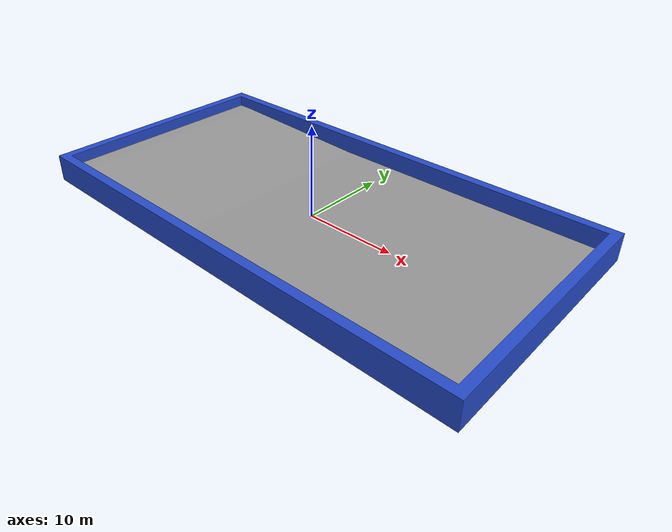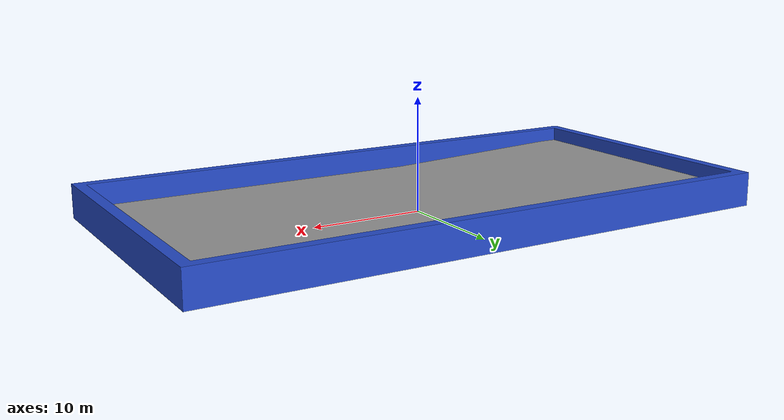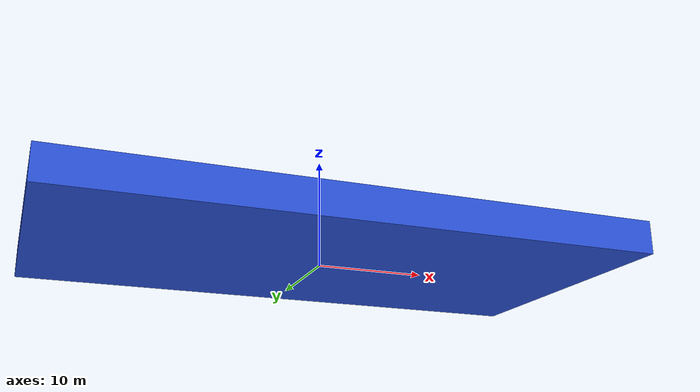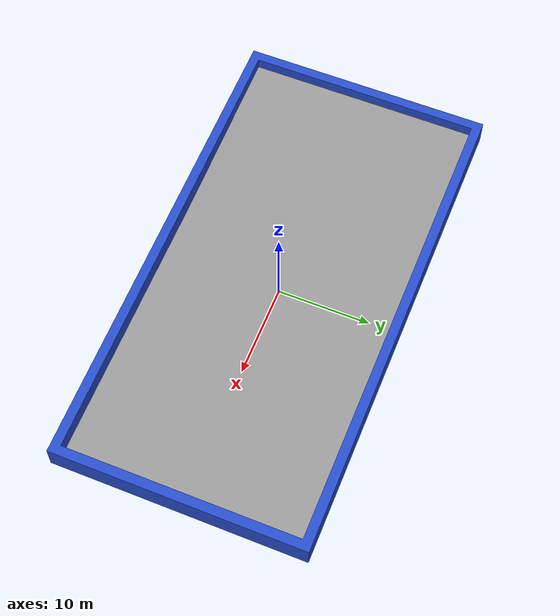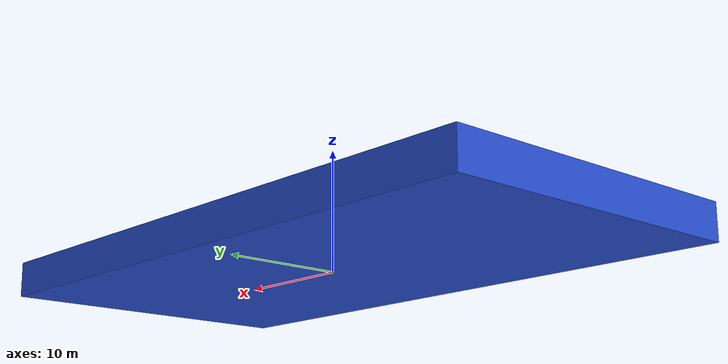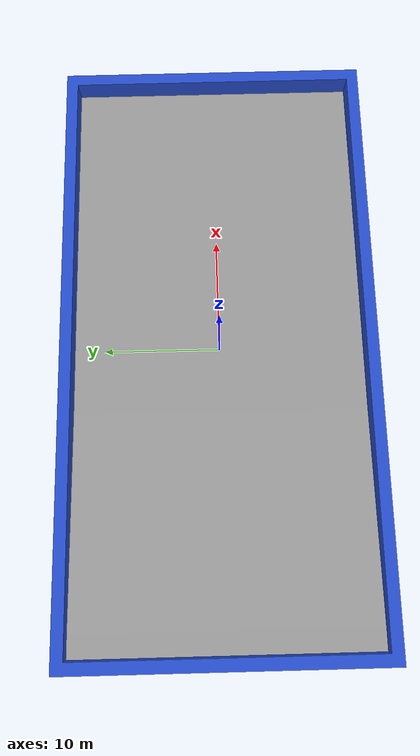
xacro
<?xml version="1.0"?>
<robot
  name="pool" xmlns:xacro="http://www.ros.org/wiki/xacro">
  <xacro:include filename="$(find pool)/urdf/materials.xacro" />
  <xacro:include filename="$(find pool)/urdf/pool.gazebo" />

  <link
    name="Base_link">
    <inertial>
      <origin
        xyz="-8.9797E-16 3.0259E-15 0.75567"
        rpy="0 0 0" />
      <mass
        value="12379000" />
      <inertia
        ixx="935560000"
        ixy="-5.1E-07"
        ixz="2.8051E-08"
        iyy="3143500000"
        iyz="6.3008E-08"
        izz="4066800000" />
    </inertial>
    <visual>
      <origin
        xyz="0 0 0"
        rpy="0 0 0" />
      <geometry>
        <mesh
          filename="package://pool/meshes/Base_link.STL" />
      </geometry>
      <material
        name="Blue">
      </material>
    </visual>
    <collision>
      <origin
        xyz="0 0 0"
        rpy="0 0 0" />
      <geometry>
        <mesh
          filename="package://pool/meshes/Base_link.STL" />
      </geometry>
    </collision>
  </link>
  <link
    name="Bottom_link">
    <inertial>
      <origin
        xyz="-0.18042 1.0283 -1.0133E-13"
        rpy="0 0 0" />
      <mass
        value="25244" />
      <inertia
        ixx="1315900"
        ixy="36721"
        ixz="5.5138E-08"
        iyy="6673200"
        iyz="1.0883E-09"
        izz="5359600" />
    </inertial>
    <visual>
      <origin
        xyz="0 0 0"
        rpy="0 0 0" />
      <geometry>
        <mesh
          filename="package://pool/meshes/Bottom_link.STL" />
      </geometry>
      <material
        name="Grey">
      </material>
    </visual>
    <collision>
      <origin
        xyz="0 0 0"
        rpy="0 0 0" />
      <geometry>
        <mesh
          filename="package://pool/meshes/Bottom_link.STL" />
      </geometry>
    </collision>
  </link>
  <joint
    name="Bottom_part"
    type="fixed">
    <origin
      xyz="0 0 0"
      rpy="1.5708 0 0" />
    <parent
      link="Base_link" />
    <child
      link="Bottom_link" />
    <axis
      xyz="0 0 0" />
  </joint>
</robot>
